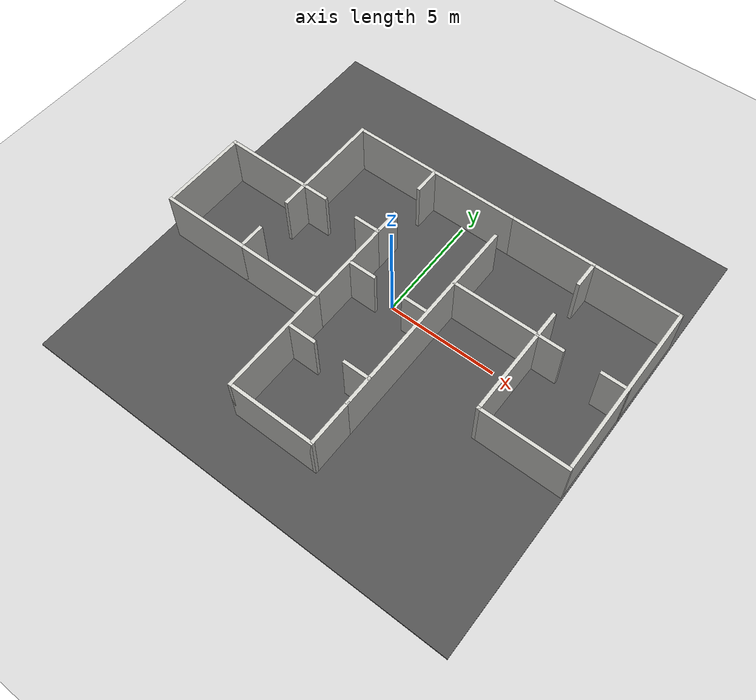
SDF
<sdf version="1.6">
 <world name="default">
  <model name="ground_plane">
   <static>1</static>
   <link name="link">
    <collision name="collision">
     <geometry><plane><normal>0 0 1</normal><size>100 100</size></plane></geometry>
     <surface><friction><ode><mu>100</mu><mu2>50</mu2></ode></friction></surface>
    </collision>
    <visual name="visual">
     <cast_shadows>0</cast_shadows>
     <geometry><plane><normal>0 0 1</normal><size>100 100</size></plane></geometry>
     <material>
      <script><uri>file://media/materials/scripts/gazebo.material</uri><name>Gazebo/Grey</name></script>
     </material>
    </visual>
   </link>
  </model>
  <gravity>0 0 -9.8</gravity>
  <magnetic_field>6e-06 2.3e-05 -4.2e-05</magnetic_field>
  <atmosphere type="adiabatic"/>
  <physics name="default_physics" default="0" type="ode">
   <max_step_size>0.001</max_step_size>
   <real_time_factor>1</real_time_factor>
   <real_time_update_rate>1000</real_time_update_rate>
  </physics>
  <scene><ambient>0.4 0.4 0.4 1</ambient><background>0.7 0.7 0.7 1</background><shadows>1</shadows></scene>
  <spherical_coordinates>
   <surface_model>EARTH_WGS84</surface_model>
   <latitude_deg>0</latitude_deg>
   <longitude_deg>0</longitude_deg>
   <elevation>0</elevation>
   <heading_deg>0</heading_deg>
  </spherical_coordinates>
  <model name="FinalWorld2">
   <pose>0.239182 -1.12799 0 0 -0 0</pose>
   <link name="Wall_0">
    <collision name="Wall_0_Collision">
     <geometry><box><size>4 0.15 2.5</size></box></geometry>
     <pose>0 0 1.25 0 -0 0</pose>
    </collision>
    <visual name="Wall_0_Visual">
     <pose>0 0 1.25 0 -0 0</pose>
     <geometry><box><size>4 0.15 2.5</size></box></geometry>
     <material>
      <script><uri>file://media/materials/scripts/gazebo.material</uri><name>Gazebo/CeilingTiled</name></script>
      <ambient>1 1 1 1</ambient>
     </material>
     <meta><layer>0</layer></meta>
    </visual>
    <pose>-9.63166 0.5 0 0 0 -1.5708</pose>
   </link>
   <link name="Wall_10">
    <collision name="Wall_10_Collision">
     <geometry><box><size>4 0.15 2.5</size></box></geometry>
     <pose>0 0 1.25 0 -0 0</pose>
    </collision>
    <visual name="Wall_10_Visual">
     <pose>0 0 1.25 0 -0 0</pose>
     <geometry><box><size>4 0.15 2.5</size></box></geometry>
     <material>
      <script><uri>file://media/materials/scripts/gazebo.material</uri><name>Gazebo/CeilingTiled</name></script>
      <ambient>1 1 1 1</ambient>
     </material>
     <meta><layer>0</layer></meta>
    </visual>
    <pose>-1.93166 0.5 0 0 -0 1.5708</pose>
   </link>
   <link name="Wall_11">
    <collision name="Wall_11_Collision">
     <geometry><box><size>1.25 0.15 2.5</size></box></geometry>
     <pose>0 0 1.25 0 -0 0</pose>
    </collision>
    <visual name="Wall_11_Visual">
     <pose>0 0 1.25 0 -0 0</pose>
     <geometry><box><size>1.25 0.15 2.5</size></box></geometry>
     <material>
      <script><uri>file://media/materials/scripts/gazebo.material</uri><name>Gazebo/CeilingTiled</name></script>
      <ambient>1 1 1 1</ambient>
     </material>
     <meta><layer>0</layer></meta>
    </visual>
    <pose>-2.48166 2.425 0 0 -0 3.14159</pose>
   </link>
   <link name="Wall_13">
    <collision name="Wall_13_Collision">
     <geometry><box><size>1.25 0.15 2.5</size></box></geometry>
     <pose>0 0 1.25 0 -0 0</pose>
    </collision>
    <visual name="Wall_13_Visual">
     <pose>0 0 1.25 0 -0 0</pose>
     <geometry><box><size>1.25 0.15 2.5</size></box></geometry>
     <material>
      <script><uri>file://media/materials/scripts/gazebo.material</uri><name>Gazebo/CeilingTiled</name></script>
      <ambient>1 1 1 1</ambient>
     </material>
     <meta><layer>0</layer></meta>
    </visual>
    <pose>-5.23166 2.425 0 0 -0 0</pose>
   </link>
   <link name="Wall_15">
    <collision name="Wall_15_Collision">
     <geometry><box><size>4 0.15 2.5</size></box></geometry>
     <pose>0 0 1.25 0 -0 0</pose>
    </collision>
    <visual name="Wall_15_Visual">
     <pose>0 0 1.25 0 -0 0</pose>
     <geometry><box><size>4 0.15 2.5</size></box></geometry>
     <material>
      <script><uri>file://media/materials/scripts/gazebo.material</uri><name>Gazebo/CeilingTiled</name></script>
      <ambient>1 1 1 1</ambient>
     </material>
     <meta><layer>0</layer></meta>
    </visual>
    <pose>-5.78166 4.35 0 0 -0 1.5708</pose>
   </link>
   <link name="Wall_16">
    <collision name="Wall_16_Collision">
     <geometry><box><size>4 0.15 2.5</size></box></geometry>
     <pose>0 0 1.25 0 -0 0</pose>
    </collision>
    <visual name="Wall_16_Visual">
     <pose>0 0 1.25 0 -0 0</pose>
     <geometry><box><size>4 0.15 2.5</size></box></geometry>
     <material>
      <script><uri>file://media/materials/scripts/gazebo.material</uri><name>Gazebo/CeilingTiled</name></script>
      <ambient>1 1 1 1</ambient>
     </material>
     <meta><layer>0</layer></meta>
    </visual>
    <pose>-3.85666 6.275 0 0 -0 0</pose>
   </link>
   <link name="Wall_17">
    <collision name="Wall_17_Collision">
     <geometry><box><size>1.25 0.15 2.5</size></box></geometry>
     <pose>0 0 1.25 0 -0 0</pose>
    </collision>
    <visual name="Wall_17_Visual">
     <pose>0 0 1.25 0 -0 0</pose>
     <geometry><box><size>1.25 0.15 2.5</size></box></geometry>
     <material>
      <script><uri>file://media/materials/scripts/gazebo.material</uri><name>Gazebo/CeilingTiled</name></script>
      <ambient>1 1 1 1</ambient>
     </material>
     <meta><layer>0</layer></meta>
    </visual>
    <pose>-1.93166 5.725 0 0 0 -1.5708</pose>
   </link>
   <link name="Wall_19">
    <collision name="Wall_19_Collision">
     <geometry><box><size>1.25 0.15 2.5</size></box></geometry>
     <pose>0 0 1.25 0 -0 0</pose>
    </collision>
    <visual name="Wall_19_Visual">
     <pose>0 0 1.25 0 -0 0</pose>
     <geometry><box><size>1.25 0.15 2.5</size></box></geometry>
     <material>
      <script><uri>file://media/materials/scripts/gazebo.material</uri><name>Gazebo/CeilingTiled</name></script>
      <ambient>1 1 1 1</ambient>
     </material>
     <meta><layer>0</layer></meta>
    </visual>
    <pose>-1.93166 2.975 0 0 -0 1.5708</pose>
   </link>
   <link name="Wall_2">
    <collision name="Wall_2_Collision">
     <geometry><box><size>4 0.15 2.5</size></box></geometry>
     <pose>0 0 1.25 0 -0 0</pose>
    </collision>
    <visual name="Wall_2_Visual">
     <pose>0 0 1.25 0 -0 0</pose>
     <geometry><box><size>4 0.15 2.5</size></box></geometry>
     <material>
      <script><uri>file://media/materials/scripts/gazebo.material</uri><name>Gazebo/CeilingTiled</name></script>
      <ambient>1 1 1 1</ambient>
     </material>
     <meta><layer>0</layer></meta>
    </visual>
    <pose>-7.70666 -1.425 0 0 -0 0</pose>
   </link>
   <link name="Wall_22">
    <collision name="Wall_22_Collision">
     <geometry><box><size>1.25 0.15 2.5</size></box></geometry>
     <pose>0 0 1.25 0 -0 0</pose>
    </collision>
    <visual name="Wall_22_Visual">
     <pose>0 0 1.25 0 -0 0</pose>
     <geometry><box><size>1.25 0.15 2.5</size></box></geometry>
     <material>
      <script><uri>file://media/materials/scripts/gazebo.material</uri><name>Gazebo/CeilingTiled</name></script>
      <ambient>1 1 1 1</ambient>
     </material>
     <meta><layer>0</layer></meta>
    </visual>
    <pose>-1.25602 0.585847 0 0 -0 0</pose>
   </link>
   <link name="Wall_24">
    <collision name="Wall_24_Collision">
     <geometry><box><size>5 0.15 2.5</size></box></geometry>
     <pose>0 0 1.25 0 -0 0</pose>
    </collision>
    <visual name="Wall_24_Visual">
     <pose>0 0 1.25 0 -0 0</pose>
     <geometry><box><size>5 0.15 2.5</size></box></geometry>
     <material>
      <script><uri>file://media/materials/scripts/gazebo.material</uri><name>Gazebo/CeilingTiled</name></script>
      <ambient>1 1 1 1</ambient>
     </material>
     <meta><layer>0</layer></meta>
    </visual>
    <pose>-1.93166 -3.85 0 0 0 -1.5708</pose>
   </link>
   <link name="Wall_26">
    <collision name="Wall_26_Collision">
     <geometry><box><size>9.5 0.15 2.5</size></box></geometry>
     <pose>0 0 1.25 0 -0 0</pose>
    </collision>
    <visual name="Wall_26_Visual">
     <pose>0 0 1.25 0 -0 0</pose>
     <geometry><box><size>9.5 0.15 2.5</size></box></geometry>
     <material>
      <script><uri>file://media/materials/scripts/gazebo.material</uri><name>Gazebo/CeilingTiled</name></script>
      <ambient>1 1 1 1</ambient>
     </material>
     <meta><layer>0</layer></meta>
    </visual>
    <pose>1.91834 0.4 0 0 -0 1.5708</pose>
   </link>
   <link name="Wall_29">
    <collision name="Wall_29_Collision">
     <geometry><box><size>4 0.15 2.5</size></box></geometry>
     <pose>0 0 1.25 0 -0 0</pose>
    </collision>
    <visual name="Wall_29_Visual">
     <pose>0 0 1.25 0 -0 0</pose>
     <geometry><box><size>4 0.15 2.5</size></box></geometry>
     <material>
      <script><uri>file://media/materials/scripts/gazebo.material</uri><name>Gazebo/CeilingTiled</name></script>
      <ambient>1 1 1 1</ambient>
     </material>
     <meta><layer>0</layer></meta>
    </visual>
    <pose>-0.006656 6.275 0 0 -0 0</pose>
   </link>
   <link name="Wall_30">
    <collision name="Wall_30_Collision">
     <geometry><box><size>4 0.15 2.5</size></box></geometry>
     <pose>0 0 1.25 0 -0 0</pose>
    </collision>
    <visual name="Wall_30_Visual">
     <pose>0 0 1.25 0 -0 0</pose>
     <geometry><box><size>4 0.15 2.5</size></box></geometry>
     <material>
      <script><uri>file://media/materials/scripts/gazebo.material</uri><name>Gazebo/CeilingTiled</name></script>
      <ambient>1 1 1 1</ambient>
     </material>
     <meta><layer>0</layer></meta>
    </visual>
    <pose>3.84334 6.275 0 0 -0 0</pose>
   </link>
   <link name="Wall_31">
    <collision name="Wall_31_Collision">
     <geometry><box><size>1.25 0.15 2.5</size></box></geometry>
     <pose>0 0 1.25 0 -0 0</pose>
    </collision>
    <visual name="Wall_31_Visual">
     <pose>0 0 1.25 0 -0 0</pose>
     <geometry><box><size>1.25 0.15 2.5</size></box></geometry>
     <material>
      <script><uri>file://media/materials/scripts/gazebo.material</uri><name>Gazebo/CeilingTiled</name></script>
      <ambient>1 1 1 1</ambient>
     </material>
     <meta><layer>0</layer></meta>
    </visual>
    <pose>5.76834 5.725 0 0 0 -1.5708</pose>
   </link>
   <link name="Wall_33">
    <collision name="Wall_33_Collision">
     <geometry><box><size>4 0.15 2.5</size></box></geometry>
     <pose>0 0 1.25 0 -0 0</pose>
    </collision>
    <visual name="Wall_33_Visual">
     <pose>0 0 1.25 0 -0 0</pose>
     <geometry><box><size>4 0.15 2.5</size></box></geometry>
     <material>
      <script><uri>file://media/materials/scripts/gazebo.material</uri><name>Gazebo/CeilingTiled</name></script>
      <ambient>1 1 1 1</ambient>
     </material>
     <meta><layer>0</layer></meta>
    </visual>
    <pose>7.69334 6.275 0 0 -0 0</pose>
   </link>
   <link name="Wall_34">
    <collision name="Wall_34_Collision">
     <geometry><box><size>8 0.15 2.5</size></box></geometry>
     <pose>0 0 1.25 0 -0 0</pose>
    </collision>
    <visual name="Wall_34_Visual">
     <pose>0 0 1.25 0 -0 0</pose>
     <geometry><box><size>8 0.15 2.5</size></box></geometry>
     <material>
      <script><uri>file://media/materials/scripts/gazebo.material</uri><name>Gazebo/CeilingTiled</name></script>
      <ambient>1 1 1 1</ambient>
     </material>
     <meta><layer>0</layer></meta>
    </visual>
    <pose>9.61834 2.35 0 0 0 -1.5708</pose>
   </link>
   <link name="Wall_35">
    <collision name="Wall_35_Collision">
     <geometry><box><size>4 0.15 2.5</size></box></geometry>
     <pose>0 0 1.25 0 -0 0</pose>
    </collision>
    <visual name="Wall_35_Visual">
     <pose>0 0 1.25 0 -0 0</pose>
     <geometry><box><size>4 0.15 2.5</size></box></geometry>
     <material>
      <script><uri>file://media/materials/scripts/gazebo.material</uri><name>Gazebo/CeilingTiled</name></script>
      <ambient>1 1 1 1</ambient>
     </material>
     <meta><layer>0</layer></meta>
    </visual>
    <pose>7.69334 -1.575 0 0 -0 3.14159</pose>
   </link>
   <link name="Wall_36">
    <collision name="Wall_36_Collision">
     <geometry><box><size>4 0.15 2.5</size></box></geometry>
     <pose>0 0 1.25 0 -0 0</pose>
    </collision>
    <visual name="Wall_36_Visual">
     <pose>0 0 1.25 0 -0 0</pose>
     <geometry><box><size>4 0.15 2.5</size></box></geometry>
     <material>
      <script><uri>file://media/materials/scripts/gazebo.material</uri><name>Gazebo/CeilingTiled</name></script>
      <ambient>1 1 1 1</ambient>
     </material>
     <meta><layer>0</layer></meta>
    </visual>
    <pose>5.76834 0.35 0 0 -0 1.5708</pose>
   </link>
   <link name="Wall_37">
    <collision name="Wall_37_Collision">
     <geometry><box><size>1.25 0.15 2.5</size></box></geometry>
     <pose>0 0 1.25 0 -0 0</pose>
    </collision>
    <visual name="Wall_37_Visual">
     <pose>0 0 1.25 0 -0 0</pose>
     <geometry><box><size>1.25 0.15 2.5</size></box></geometry>
     <material>
      <script><uri>file://media/materials/scripts/gazebo.material</uri><name>Gazebo/CeilingTiled</name></script>
      <ambient>1 1 1 1</ambient>
     </material>
     <meta><layer>0</layer></meta>
    </visual>
    <pose>6.31834 2.275 0 0 -0 0</pose>
   </link>
   <link name="Wall_4">
    <collision name="Wall_4_Collision">
     <geometry><box><size>4 0.15 2.5</size></box></geometry>
     <pose>0 0 1.25 0 -0 0</pose>
    </collision>
    <visual name="Wall_4_Visual">
     <pose>0 0 1.25 0 -0 0</pose>
     <geometry><box><size>4 0.15 2.5</size></box></geometry>
     <material>
      <script><uri>file://media/materials/scripts/gazebo.material</uri><name>Gazebo/CeilingTiled</name></script>
      <ambient>1 1 1 1</ambient>
     </material>
     <meta><layer>0</layer></meta>
    </visual>
    <pose>-7.70666 2.425 0 0 -0 0</pose>
   </link>
   <link name="Wall_40">
    <collision name="Wall_40_Collision">
     <geometry><box><size>1.25 0.15 2.5</size></box></geometry>
     <pose>0 0 1.25 0 -0 0</pose>
    </collision>
    <visual name="Wall_40_Visual">
     <pose>0 0 1.25 0 -0 0</pose>
     <geometry><box><size>1.25 0.15 2.5</size></box></geometry>
     <material>
      <script><uri>file://media/materials/scripts/gazebo.material</uri><name>Gazebo/CeilingTiled</name></script>
      <ambient>1 1 1 1</ambient>
     </material>
     <meta><layer>0</layer></meta>
    </visual>
    <pose>9.08166 2.34621 0 0 -0 3.14159</pose>
   </link>
   <link name="Wall_42">
    <collision name="Wall_42_Collision">
     <geometry><box><size>1.25 0.15 2.5</size></box></geometry>
     <pose>0 0 1.25 0 -0 0</pose>
    </collision>
    <visual name="Wall_42_Visual">
     <pose>0 0 1.25 0 -0 0</pose>
     <geometry><box><size>1.25 0.15 2.5</size></box></geometry>
     <material>
      <script><uri>file://media/materials/scripts/gazebo.material</uri><name>Gazebo/CeilingTiled</name></script>
      <ambient>1 1 1 1</ambient>
     </material>
     <meta><layer>0</layer></meta>
    </visual>
    <pose>5.76834 2.825 0 0 -0 1.5708</pose>
   </link>
   <link name="Wall_44">
    <collision name="Wall_44_Collision">
     <geometry><box><size>1.25 0.15 2.5</size></box></geometry>
     <pose>0 0 1.25 0 -0 0</pose>
    </collision>
    <visual name="Wall_44_Visual">
     <pose>0 0 1.25 0 -0 0</pose>
     <geometry><box><size>1.25 0.15 2.5</size></box></geometry>
     <material>
      <script><uri>file://media/materials/scripts/gazebo.material</uri><name>Gazebo/CeilingTiled</name></script>
      <ambient>1 1 1 1</ambient>
     </material>
     <meta><layer>0</layer></meta>
    </visual>
    <pose>1.341 0.563996 0 0 -0 3.14159</pose>
   </link>
   <link name="Wall_48">
    <collision name="Wall_48_Collision">
     <geometry><box><size>4 0.15 2.5</size></box></geometry>
     <pose>0 0 1.25 0 -0 0</pose>
    </collision>
    <visual name="Wall_48_Visual">
     <pose>0 0 1.25 0 -0 0</pose>
     <geometry><box><size>4 0.15 2.5</size></box></geometry>
     <material>
      <script><uri>file://media/materials/scripts/gazebo.material</uri><name>Gazebo/CeilingTiled</name></script>
      <ambient>1 1 1 1</ambient>
     </material>
     <meta><layer>0</layer></meta>
    </visual>
    <pose>-0.006656 -6.275 0 0 -0 0</pose>
   </link>
   <link name="Wall_5">
    <collision name="Wall_5_Collision">
     <geometry><box><size>1.25 0.15 2.5</size></box></geometry>
     <pose>0 0 1.25 0 -0 0</pose>
    </collision>
    <visual name="Wall_5_Visual">
     <pose>0 0 1.25 0 -0 0</pose>
     <geometry><box><size>1.25 0.15 2.5</size></box></geometry>
     <material>
      <script><uri>file://media/materials/scripts/gazebo.material</uri><name>Gazebo/CeilingTiled</name></script>
      <ambient>1 1 1 1</ambient>
     </material>
     <meta><layer>0</layer></meta>
    </visual>
    <pose>-5.78166 1.875 0 0 0 -1.5708</pose>
   </link>
   <link name="Wall_50">
    <collision name="Wall_50_Collision">
     <geometry><box><size>2.15 0.15 2.5</size></box></geometry>
     <pose>0 0 1.25 0 -0 0</pose>
    </collision>
    <visual name="Wall_50_Visual">
     <pose>0 0 1.25 0 -0 0</pose>
     <geometry><box><size>2.15 0.15 2.5</size></box></geometry>
     <material>
      <script><uri>file://media/materials/scripts/gazebo.material</uri><name>Gazebo/CeilingTiled</name></script>
      <ambient>1 1 1 1</ambient>
     </material>
     <meta><layer>0</layer></meta>
    </visual>
    <pose>1.91834 -5.275 0 0 0 -1.5708</pose>
   </link>
   <link name="Wall_52">
    <collision name="Wall_52_Collision">
     <geometry><box><size>1.25 0.15 2.5</size></box></geometry>
     <pose>0 0 1.25 0 -0 0</pose>
    </collision>
    <visual name="Wall_52_Visual">
     <pose>0 0 1.25 0 -0 0</pose>
     <geometry><box><size>1.25 0.15 2.5</size></box></geometry>
     <material>
      <script><uri>file://media/materials/scripts/gazebo.material</uri><name>Gazebo/CeilingTiled</name></script>
      <ambient>1 1 1 1</ambient>
     </material>
     <meta><layer>0</layer></meta>
    </visual>
    <pose>-1.24231 -3.05311 0 0 -0 0</pose>
   </link>
   <link name="Wall_54">
    <collision name="Wall_54_Collision">
     <geometry><box><size>1.25 0.15 2.5</size></box></geometry>
     <pose>0 0 1.25 0 -0 0</pose>
    </collision>
    <visual name="Wall_54_Visual">
     <pose>0 0 1.25 0 -0 0</pose>
     <geometry><box><size>1.25 0.15 2.5</size></box></geometry>
     <material>
      <script><uri>file://media/materials/scripts/gazebo.material</uri><name>Gazebo/CeilingTiled</name></script>
      <ambient>1 1 1 1</ambient>
     </material>
     <meta><layer>0</layer></meta>
    </visual>
    <pose>1.34257 -3.02855 0 0 -0 3.14159</pose>
   </link>
   <link name="Wall_56">
    <collision name="Wall_56_Collision">
     <geometry><box><size>4 0.15 2.5</size></box></geometry>
     <pose>0 0 1.25 0 -0 0</pose>
    </collision>
    <visual name="Wall_56_Visual">
     <pose>0 0 1.25 0 -0 0</pose>
     <geometry><box><size>4 0.15 2.5</size></box></geometry>
     <material>
      <script><uri>file://media/materials/scripts/gazebo.material</uri><name>Gazebo/CeilingTiled</name></script>
      <ambient>1 1 1 1</ambient>
     </material>
     <meta><layer>0</layer></meta>
    </visual>
    <pose>3.84334 2.275 0 0 -0 3.14159</pose>
   </link>
   <link name="Wall_7">
    <collision name="Wall_7_Collision">
     <geometry><box><size>1.25 0.15 2.5</size></box></geometry>
     <pose>0 0 1.25 0 -0 0</pose>
    </collision>
    <visual name="Wall_7_Visual">
     <pose>0 0 1.25 0 -0 0</pose>
     <geometry><box><size>1.25 0.15 2.5</size></box></geometry>
     <material>
      <script><uri>file://media/materials/scripts/gazebo.material</uri><name>Gazebo/CeilingTiled</name></script>
      <ambient>1 1 1 1</ambient>
     </material>
     <meta><layer>0</layer></meta>
    </visual>
    <pose>-5.78166 -0.875 0 0 -0 1.5708</pose>
   </link>
   <link name="Wall_9">
    <collision name="Wall_9_Collision">
     <geometry><box><size>4 0.15 2.5</size></box></geometry>
     <pose>0 0 1.25 0 -0 0</pose>
    </collision>
    <visual name="Wall_9_Visual">
     <pose>0 0 1.25 0 -0 0</pose>
     <geometry><box><size>4 0.15 2.5</size></box></geometry>
     <material>
      <script><uri>file://media/materials/scripts/gazebo.material</uri><name>Gazebo/CeilingTiled</name></script>
      <ambient>1 1 1 1</ambient>
     </material>
     <meta><layer>0</layer></meta>
    </visual>
    <pose>-3.85666 -1.425 0 0 -0 0</pose>
   </link>
   <static>1</static>
  </model>
  <model name="asphalt_plane">
   <static>1</static>
   <link name="link">
    <collision name="collision"><geometry><box><size>20 20 0.1</size></box></geometry></collision>
    <visual name="visual">
     <cast_shadows>0</cast_shadows>
     <geometry><box><size>20 20 0.1</size></box></geometry>
     <material>
      <script>
       <uri>model://asphalt_plane/materials/scripts</uri>
       <uri>model://asphalt_plane/materials/textures</uri>
       <name>vrc/asphalt</name>
      </script>
     </material>
    </visual>
   </link>
   <pose>-0.010644 0.093853 0 0 -0 0</pose>
  </model>
  <light name="user_directional_light_0" type="directional">
   <pose>0.718231 -1.222 1 0 -0 0</pose>
   <diffuse>0.5 0.5 0.5 1</diffuse>
   <specular>0.1 0.1 0.1 1</specular>
   <direction>0.1 0.1 -0.9</direction>
   <attenuation>
    <range>20</range>
    <constant>0.5</constant>
    <linear>0.01</linear>
    <quadratic>0.001</quadratic>
   </attenuation>
  </light>
  <light name="user_directional_light_1" type="directional">
   <pose>7.15862 1.52616 1 0 -0 0</pose>
   <diffuse>0.5 0.5 0.5 1</diffuse>
   <specular>0.1 0.1 0.1 1</specular>
   <direction>0.1 0.1 -0.9</direction>
   <attenuation>
    <range>20</range>
    <constant>0.5</constant>
    <linear>0.01</linear>
    <quadratic>0.001</quadratic>
   </attenuation>
  </light>
 </world>
</sdf>
